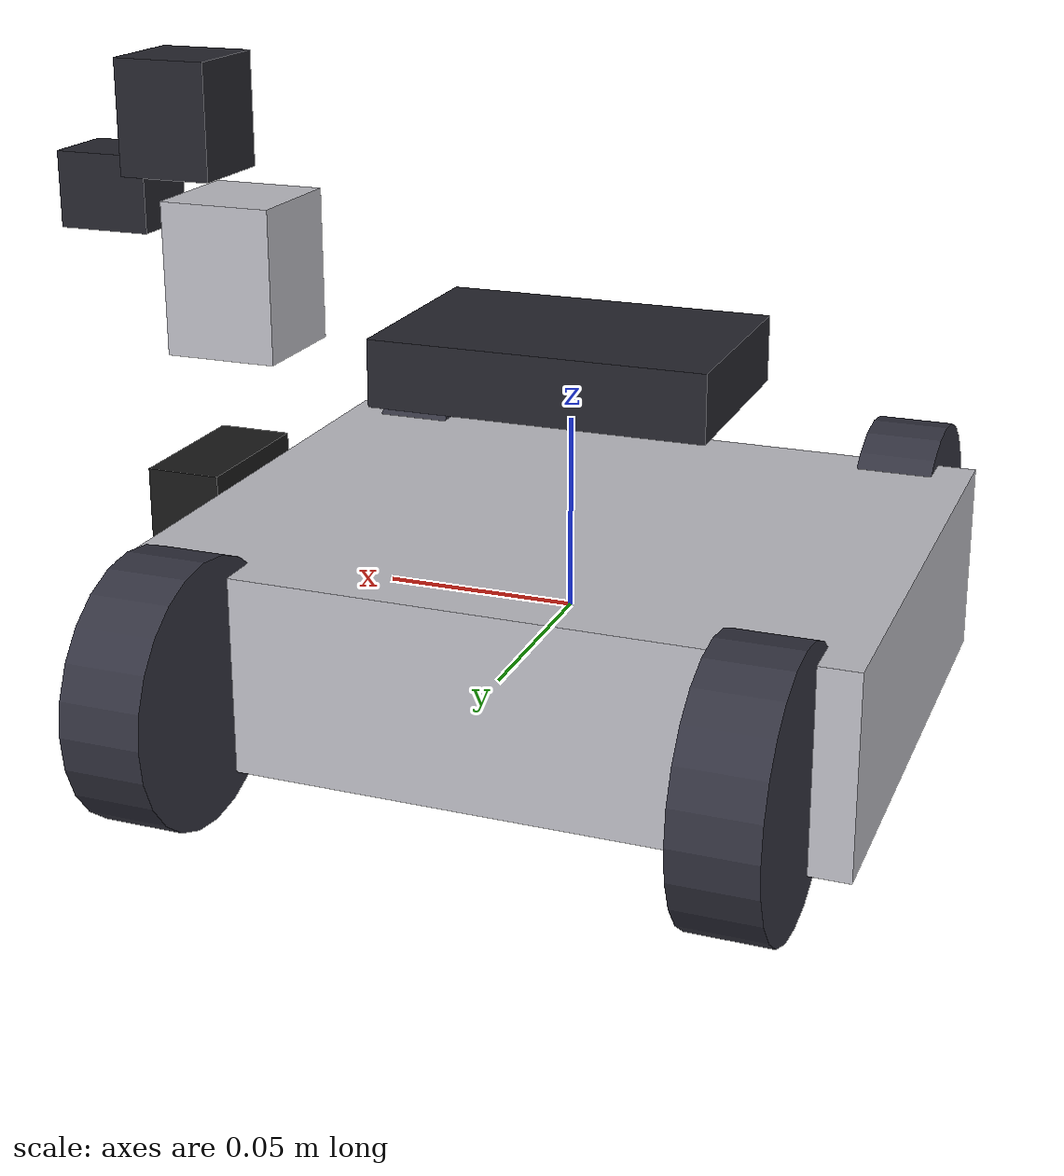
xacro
<?xml version="1.0"?>
<robot xmlns:xacro="http://www.ros.org/wiki/xacro" name="turbopi">

  <!-- Materials -->
  <material name="black">
    <color rgba="0.1 0.1 0.1 1.0"/>
  </material>
  <material name="aluminum">
    <color rgba="0.75 0.75 0.78 1.0"/>
  </material>
  <material name="camera_dark">
    <color rgba="0.15 0.15 0.18 1.0"/>
  </material>
  <material name="wheel">
    <color rgba="0.2 0.2 0.25 1.0"/>
  </material>

  <!-- Base chassis (aluminum frame) -->
  <link name="base_link">
    <visual>
      <geometry>
        <box size="0.18 0.14 0.05"/>
      </geometry>
      <material name="aluminum"/>
    </visual>
    <collision>
      <geometry>
        <box size="0.18 0.14 0.05"/>
      </geometry>
    </collision>
    <inertial>
      <mass value="1.2"/>
      <inertia ixx="0.004" ixy="0.0" ixz="0.0" iyy="0.006" iyz="0.0" izz="0.004"/>
    </inertial>
  </link>

  <!-- Raspberry Pi 5 board on top -->
  <link name="rpi5">
    <visual>
      <geometry>
        <box size="0.085 0.056 0.017"/>
      </geometry>
      <origin xyz="0.0 0.0 0.035"/>
      <material name="camera_dark"/>
    </visual>
    <collision>
      <geometry>
        <box size="0.085 0.056 0.017"/>
      </geometry>
      <origin xyz="0.0 0.0 0.035"/>
    </collision>
  </link>
  <joint name="rpi5_joint" type="fixed">
    <parent link="base_link"/>
    <child link="rpi5"/>
    <origin xyz="0.0 0.0 0.03"/>
  </joint>

  <!-- Pan-tilt camera head -->
  <link name="camera_pan">
    <visual>
      <geometry>
        <box size="0.03 0.03 0.04"/>
      </geometry>
      <origin xyz="0.0 0.0 0.02"/>
      <material name="aluminum"/>
    </visual>
  </link>
  <joint name="camera_pan_joint" type="revolute">
    <parent link="base_link"/>
    <child link="camera_pan"/>
    <origin xyz="0.09 0.0 0.06"/>
    <axis xyz="0 0 1"/>
    <limit lower="-1.57" upper="1.57" effort="0.5" velocity="3.0"/>
  </joint>

  <link name="camera_tilt">
    <visual>
      <geometry>
        <box size="0.025 0.025 0.03"/>
      </geometry>
      <origin xyz="0.0 0.0 0.02"/>
      <material name="camera_dark"/>
    </visual>
  </link>
  <joint name="camera_tilt_joint" type="revolute">
    <parent link="camera_pan"/>
    <child link="camera_tilt"/>
    <origin xyz="0.015 0.0 0.04"/>
    <axis xyz="0 1 0"/>
    <limit lower="-1.2" upper="1.2" effort="0.5" velocity="3.0"/>
  </joint>

  <!-- Camera (120-degree wide angle) -->
  <link name="camera_link">
    <visual>
      <geometry>
        <box size="0.025 0.02 0.02"/>
      </geometry>
      <origin xyz="0.0 0.0 0.0"/>
      <material name="camera_dark"/>
    </visual>
  </link>
  <joint name="camera_joint" type="fixed">
    <parent link="camera_tilt"/>
    <child link="camera_link"/>
    <origin xyz="0.02 0.0 0.0"/>
  </joint>

  <!-- Camera optical frame (ROS standard) -->
  <link name="camera_optical_frame"/>
  <joint name="camera_optical_joint" type="fixed">
    <parent link="camera_link"/>
    <child link="camera_optical_frame"/>
    <origin xyz="0.0 0.0 0.0" rpy="-1.5708 0.0 -1.5708"/>
  </joint>

  <!-- 4 mecanum wheels -->
  <!-- Front-left -->
  <link name="wheel_fl">
    <visual>
      <geometry>
        <cylinder radius="0.0325" length="0.02"/>
      </geometry>
      <origin rpy="0 1.5708 0"/>
      <material name="wheel"/>
    </visual>
    <collision>
      <geometry>
        <cylinder radius="0.0325" length="0.02"/>
      </geometry>
      <origin rpy="0 1.5708 0"/>
    </collision>
    <inertial>
      <mass value="0.05"/>
      <inertia ixx="0.00002" ixy="0.0" ixz="0.0" iyy="0.00002" iyz="0.0" izz="0.00003"/>
    </inertial>
  </link>
  <joint name="wheel_fl_joint" type="continuous">
    <parent link="base_link"/>
    <child link="wheel_fl"/>
    <origin xyz="0.07 0.08 0.0"/>
    <axis xyz="0 1 0"/>
  </joint>

  <!-- Front-right -->
  <link name="wheel_fr">
    <visual>
      <geometry>
        <cylinder radius="0.0325" length="0.02"/>
      </geometry>
      <origin rpy="0 1.5708 0"/>
      <material name="wheel"/>
    </visual>
    <collision>
      <geometry>
        <cylinder radius="0.0325" length="0.02"/>
      </geometry>
      <origin rpy="0 1.5708 0"/>
    </collision>
    <inertial>
      <mass value="0.05"/>
      <inertia ixx="0.00002" ixy="0.0" ixz="0.0" iyy="0.00002" iyz="0.0" izz="0.00003"/>
    </inertial>
  </link>
  <joint name="wheel_fr_joint" type="continuous">
    <parent link="base_link"/>
    <child link="wheel_fr"/>
    <origin xyz="0.07 -0.08 0.0"/>
    <axis xyz="0 1 0"/>
  </joint>

  <!-- Rear-left -->
  <link name="wheel_rl">
    <visual>
      <geometry>
        <cylinder radius="0.0325" length="0.02"/>
      </geometry>
      <origin rpy="0 1.5708 0"/>
      <material name="wheel"/>
    </visual>
    <collision>
      <geometry>
        <cylinder radius="0.0325" length="0.02"/>
      </geometry>
      <origin rpy="0 1.5708 0"/>
    </collision>
    <inertial>
      <mass value="0.05"/>
      <inertia ixx="0.00002" ixy="0.0" ixz="0.0" iyy="0.00002" iyz="0.0" izz="0.00003"/>
    </inertial>
  </link>
  <joint name="wheel_rl_joint" type="continuous">
    <parent link="base_link"/>
    <child link="wheel_rl"/>
    <origin xyz="-0.07 0.08 0.0"/>
    <axis xyz="0 1 0"/>
  </joint>

  <!-- Rear-right -->
  <link name="wheel_rr">
    <visual>
      <geometry>
        <cylinder radius="0.0325" length="0.02"/>
      </geometry>
      <origin rpy="0 1.5708 0"/>
      <material name="wheel"/>
    </visual>
    <collision>
      <geometry>
        <cylinder radius="0.0325" length="0.02"/>
      </geometry>
      <origin rpy="0 1.5708 0"/>
    </collision>
    <inertial>
      <mass value="0.05"/>
      <inertia ixx="0.00002" ixy="0.0" ixz="0.0" iyy="0.00002" iyz="0.0" izz="0.00003"/>
    </inertial>
  </link>
  <joint name="wheel_rr_joint" type="continuous">
    <parent link="base_link"/>
    <child link="wheel_rr"/>
    <origin xyz="-0.07 -0.08 0.0"/>
    <axis xyz="0 1 0"/>
  </joint>

  <!-- Line-follower IR sensor array (front) -->
  <link name="ir_sensors">
    <visual>
      <geometry>
        <box size="0.05 0.02 0.01"/>
      </geometry>
      <origin xyz="0.0 0.0 0.0"/>
      <material name="black"/>
    </visual>
  </link>
  <joint name="ir_sensors_joint" type="fixed">
    <parent link="base_link"/>
    <child link="ir_sensors"/>
    <origin xyz="0.09 0.0 -0.02"/>
  </joint>

  <!-- Ultrasonic sensor (front) -->
  <link name="ultrasonic">
    <visual>
      <geometry>
        <box size="0.02 0.04 0.02"/>
      </geometry>
      <origin xyz="0.0 0.0 0.0"/>
      <material name="black"/>
    </visual>
  </link>
  <joint name="ultrasonic_joint" type="fixed">
    <parent link="base_link"/>
    <child link="ultrasonic"/>
    <origin xyz="0.1 0.0 0.02"/>
  </joint>

</robot>
